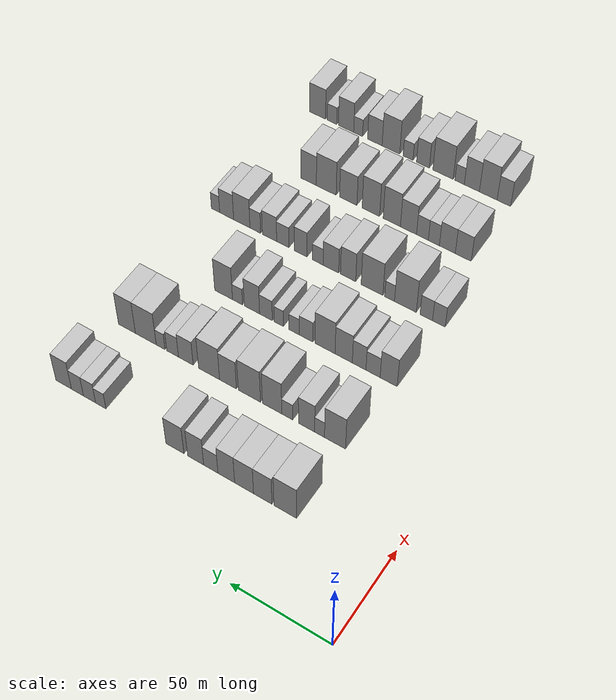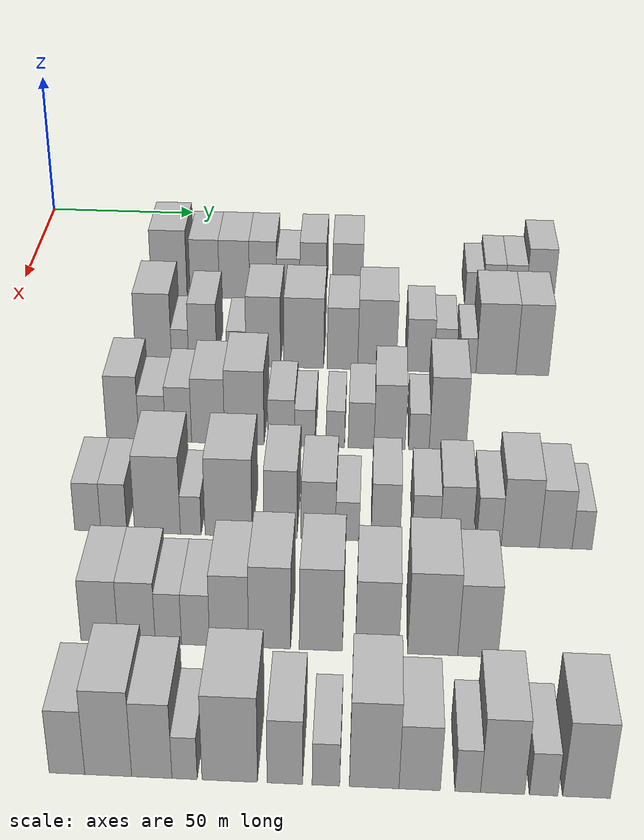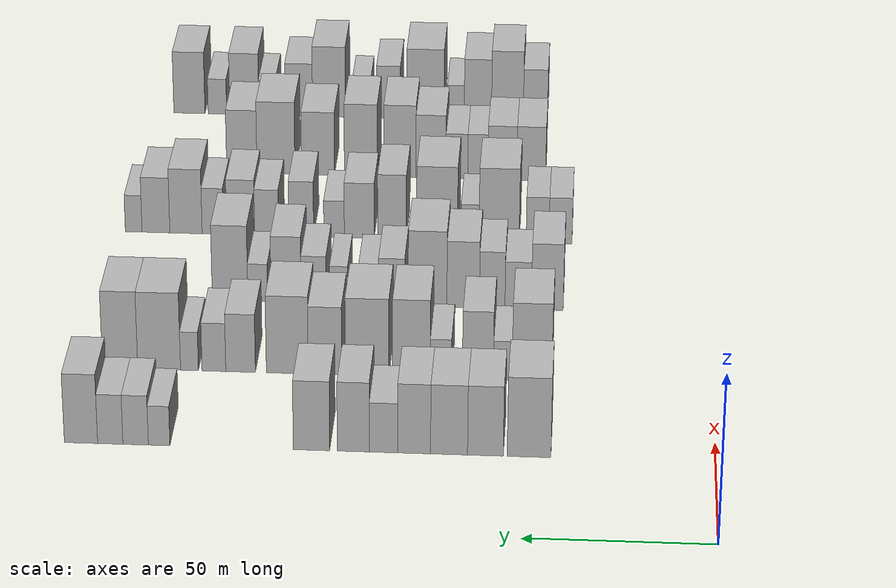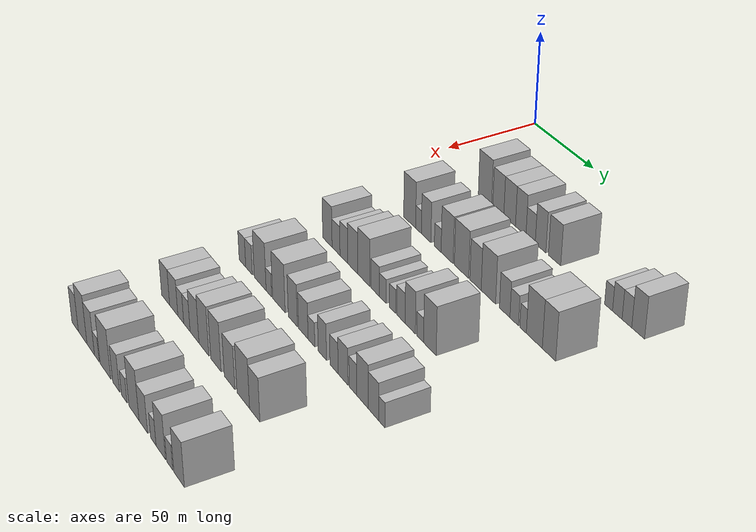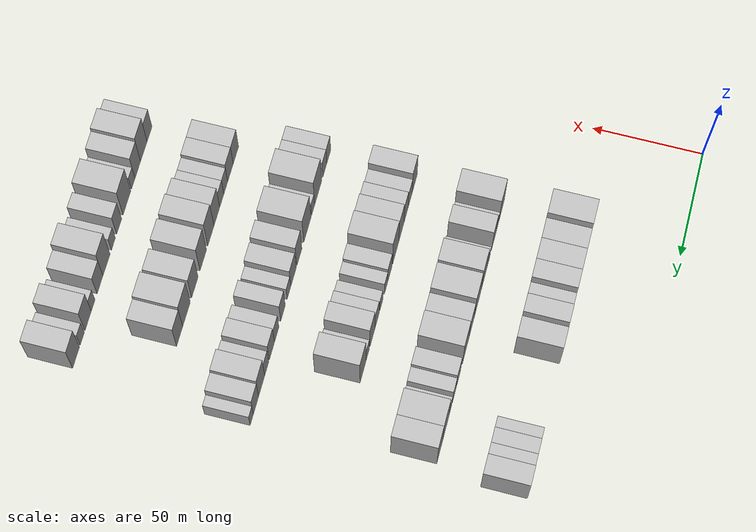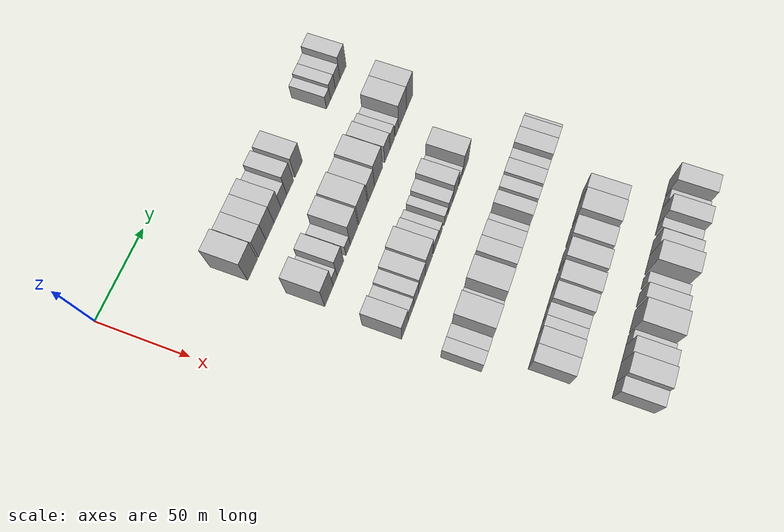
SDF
<sdf version="1.6">
 <world name="default">
  <model name="building_71">
   <static>1</static>
   <pose>50.0000 48.9919 0 0.000000 0.000000 0.000000</pose>
   <link name="link">
    <pose>0 0 12.00 0 0 0</pose>
    <collision name="collision"><geometry><box><size>20.0000 11.5092 24.0000</size></box></geometry></collision>
    <visual name="visual">
     <cast_shadows>0</cast_shadows>
     <geometry><box><size>20.0000 11.5092 24.0000</size></box></geometry>
     <material>
      <script>
       <uri>model://HANNAS_wall/materials/scripts</uri>
       <uri>model://HANNAS_wall/materials/textures</uri>
       <name>vrc/HANNAS_wall</name>
      </script>
     </material>
    </visual>
   </link>
  </model>
  <model name="building_72">
   <static>1</static>
   <pose>50.0000 60.4584 0 0.000000 0.000000 0.000000</pose>
   <link name="link">
    <pose>0 0 10.50 0 0 0</pose>
    <collision name="collision"><geometry><box><size>20.0000 9.4237 21.0000</size></box></geometry></collision>
    <visual name="visual">
     <cast_shadows>0</cast_shadows>
     <geometry><box><size>20.0000 9.4237 21.0000</size></box></geometry>
     <material>
      <script>
       <uri>model://HANNAS_wall/materials/scripts</uri>
       <uri>model://HANNAS_wall/materials/textures</uri>
       <name>vrc/HANNAS_wall</name>
      </script>
     </material>
    </visual>
   </link>
  </model>
  <model name="building_73">
   <static>1</static>
   <pose>50.0000 70.0473 0 0.000000 0.000000 0.000000</pose>
   <link name="link">
    <pose>0 0 10.50 0 0 0</pose>
    <collision name="collision"><geometry><box><size>20.0000 9.7540 21.0000</size></box></geometry></collision>
    <visual name="visual">
     <cast_shadows>0</cast_shadows>
     <geometry><box><size>20.0000 9.7540 21.0000</size></box></geometry>
     <material>
      <script>
       <uri>model://HANNAS_wall/materials/scripts</uri>
       <uri>model://HANNAS_wall/materials/textures</uri>
       <name>vrc/HANNAS_wall</name>
      </script>
     </material>
    </visual>
   </link>
  </model>
  <model name="building_74">
   <static>1</static>
   <pose>50.0000 79.2702 0 0.000000 0.000000 0.000000</pose>
   <link name="link">
    <pose>0 0 10.50 0 0 0</pose>
    <collision name="collision"><geometry><box><size>20.0000 8.6919 21.0000</size></box></geometry></collision>
    <visual name="visual">
     <cast_shadows>0</cast_shadows>
     <geometry><box><size>20.0000 8.6919 21.0000</size></box></geometry>
     <material>
      <script>
       <uri>model://HANNAS_wall/materials/scripts</uri>
       <uri>model://HANNAS_wall/materials/textures</uri>
       <name>vrc/HANNAS_wall</name>
      </script>
     </material>
    </visual>
   </link>
  </model>
  <model name="building_75">
   <static>1</static>
   <pose>50.0000 87.3554 0 0.000000 0.000000 0.000000</pose>
   <link name="link">
    <pose>0 0 7.50 0 0 0</pose>
    <collision name="collision"><geometry><box><size>20.0000 7.4786 15.0000</size></box></geometry></collision>
    <visual name="visual">
     <cast_shadows>0</cast_shadows>
     <geometry><box><size>20.0000 7.4786 15.0000</size></box></geometry>
     <material>
      <script>
       <uri>model://HANNAS_wall/materials/scripts</uri>
       <uri>model://HANNAS_wall/materials/textures</uri>
       <name>vrc/HANNAS_wall</name>
      </script>
     </material>
    </visual>
   </link>
  </model>
  <model name="building_76">
   <static>1</static>
   <pose>50.0000 95.3238 0 0.000000 0.000000 0.000000</pose>
   <link name="link">
    <pose>0 0 10.50 0 0 0</pose>
    <collision name="collision"><geometry><box><size>20.0000 8.4582 21.0000</size></box></geometry></collision>
    <visual name="visual">
     <cast_shadows>0</cast_shadows>
     <geometry><box><size>20.0000 8.4582 21.0000</size></box></geometry>
     <material>
      <script>
       <uri>model://HANNAS_wall/materials/scripts</uri>
       <uri>model://HANNAS_wall/materials/textures</uri>
       <name>vrc/HANNAS_wall</name>
      </script>
     </material>
    </visual>
   </link>
  </model>
  <model name="building_77">
   <static>1</static>
   <pose>50.0000 106.3644 0 0.000000 0.000000 0.000000</pose>
   <link name="link">
    <pose>0 0 10.50 0 0 0</pose>
    <collision name="collision"><geometry><box><size>20.0000 9.6230 21.0000</size></box></geometry></collision>
    <visual name="visual">
     <cast_shadows>0</cast_shadows>
     <geometry><box><size>20.0000 9.6230 21.0000</size></box></geometry>
     <material>
      <script>
       <uri>model://HANNAS_wall/materials/scripts</uri>
       <uri>model://HANNAS_wall/materials/textures</uri>
       <name>vrc/HANNAS_wall</name>
      </script>
     </material>
    </visual>
   </link>
  </model>
  <model name="building_78">
   <static>1</static>
   <pose>50.0000 146.7828 0 0.000000 0.000000 0.000000</pose>
   <link name="link">
    <pose>0 0 6.00 0 0 0</pose>
    <collision name="collision"><geometry><box><size>20.0000 5.7379 12.0000</size></box></geometry></collision>
    <visual name="visual">
     <cast_shadows>0</cast_shadows>
     <geometry><box><size>20.0000 5.7379 12.0000</size></box></geometry>
     <material>
      <script>
       <uri>model://HANNAS_wall/materials/scripts</uri>
       <uri>model://HANNAS_wall/materials/textures</uri>
       <name>vrc/HANNAS_wall</name>
      </script>
     </material>
    </visual>
   </link>
  </model>
  <model name="building_79">
   <static>1</static>
   <pose>50.0000 153.0316 0 0.000000 0.000000 0.000000</pose>
   <link name="link">
    <pose>0 0 7.50 0 0 0</pose>
    <collision name="collision"><geometry><box><size>20.0000 6.7597 15.0000</size></box></geometry></collision>
    <visual name="visual">
     <cast_shadows>0</cast_shadows>
     <geometry><box><size>20.0000 6.7597 15.0000</size></box></geometry>
     <material>
      <script>
       <uri>model://HANNAS_wall/materials/scripts</uri>
       <uri>model://HANNAS_wall/materials/textures</uri>
       <name>vrc/HANNAS_wall</name>
      </script>
     </material>
    </visual>
   </link>
  </model>
  <model name="building_80">
   <static>1</static>
   <pose>50.0000 159.7763 0 0.000000 0.000000 0.000000</pose>
   <link name="link">
    <pose>0 0 7.50 0 0 0</pose>
    <collision name="collision"><geometry><box><size>20.0000 6.7298 15.0000</size></box></geometry></collision>
    <visual name="visual">
     <cast_shadows>0</cast_shadows>
     <geometry><box><size>20.0000 6.7298 15.0000</size></box></geometry>
     <material>
      <script>
       <uri>model://HANNAS_wall/materials/scripts</uri>
       <uri>model://HANNAS_wall/materials/textures</uri>
       <name>vrc/HANNAS_wall</name>
      </script>
     </material>
    </visual>
   </link>
  </model>
  <model name="building_81">
   <static>1</static>
   <pose>50.0000 167.5691 0 0.000000 0.000000 0.000000</pose>
   <link name="link">
    <pose>0 0 10.50 0 0 0</pose>
    <collision name="collision"><geometry><box><size>20.0000 8.8558 21.0000</size></box></geometry></collision>
    <visual name="visual">
     <cast_shadows>0</cast_shadows>
     <geometry><box><size>20.0000 8.8558 21.0000</size></box></geometry>
     <material>
      <script>
       <uri>model://HANNAS_wall/materials/scripts</uri>
       <uri>model://HANNAS_wall/materials/textures</uri>
       <name>vrc/HANNAS_wall</name>
      </script>
     </material>
    </visual>
   </link>
  </model>
  <model name="building_202">
   <static>1</static>
   <pose>90.0000 49.2745 0 0.000000 0.000000 0.000000</pose>
   <link name="link">
    <pose>0 0 12.00 0 0 0</pose>
    <collision name="collision"><geometry><box><size>20.0000 10.8349 24.0000</size></box></geometry></collision>
    <visual name="visual">
     <cast_shadows>0</cast_shadows>
     <geometry><box><size>20.0000 10.8349 24.0000</size></box></geometry>
     <material>
      <script>
       <uri>model://HANNAS_wall/materials/scripts</uri>
       <uri>model://HANNAS_wall/materials/textures</uri>
       <name>vrc/HANNAS_wall</name>
      </script>
     </material>
    </visual>
   </link>
  </model>
  <model name="building_203">
   <static>1</static>
   <pose>90.0000 57.2523 0 0.000000 0.000000 0.000000</pose>
   <link name="link">
    <pose>0 0 6.00 0 0 0</pose>
    <collision name="collision"><geometry><box><size>20.0000 5.1207 12.0000</size></box></geometry></collision>
    <visual name="visual">
     <cast_shadows>0</cast_shadows>
     <geometry><box><size>20.0000 5.1207 12.0000</size></box></geometry>
     <material>
      <script>
       <uri>model://HANNAS_wall/materials/scripts</uri>
       <uri>model://HANNAS_wall/materials/textures</uri>
       <name>vrc/HANNAS_wall</name>
      </script>
     </material>
    </visual>
   </link>
  </model>
  <model name="building_204">
   <static>1</static>
   <pose>90.0000 64.0309 0 0.000000 0.000000 0.000000</pose>
   <link name="link">
    <pose>0 0 10.50 0 0 0</pose>
    <collision name="collision"><geometry><box><size>20.0000 8.4365 21.0000</size></box></geometry></collision>
    <visual name="visual">
     <cast_shadows>0</cast_shadows>
     <geometry><box><size>20.0000 8.4365 21.0000</size></box></geometry>
     <material>
      <script>
       <uri>model://HANNAS_wall/materials/scripts</uri>
       <uri>model://HANNAS_wall/materials/textures</uri>
       <name>vrc/HANNAS_wall</name>
      </script>
     </material>
    </visual>
   </link>
  </model>
  <model name="building_205">
   <static>1</static>
   <pose>90.0000 74.1475 0 0.000000 0.000000 0.000000</pose>
   <link name="link">
    <pose>0 0 6.00 0 0 0</pose>
    <collision name="collision"><geometry><box><size>20.0000 5.7967 12.0000</size></box></geometry></collision>
    <visual name="visual">
     <cast_shadows>0</cast_shadows>
     <geometry><box><size>20.0000 5.7967 12.0000</size></box></geometry>
     <material>
      <script>
       <uri>model://HANNAS_wall/materials/scripts</uri>
       <uri>model://HANNAS_wall/materials/textures</uri>
       <name>vrc/HANNAS_wall</name>
      </script>
     </material>
    </visual>
   </link>
  </model>
  <model name="building_206">
   <static>1</static>
   <pose>90.0000 82.1912 0 0.000000 0.000000 0.000000</pose>
   <link name="link">
    <pose>0 0 12.00 0 0 0</pose>
    <collision name="collision"><geometry><box><size>20.0000 10.2907 24.0000</size></box></geometry></collision>
    <visual name="visual">
     <cast_shadows>0</cast_shadows>
     <geometry><box><size>20.0000 10.2907 24.0000</size></box></geometry>
     <material>
      <script>
       <uri>model://HANNAS_wall/materials/scripts</uri>
       <uri>model://HANNAS_wall/materials/textures</uri>
       <name>vrc/HANNAS_wall</name>
      </script>
     </material>
    </visual>
   </link>
  </model>
  <model name="building_207">
   <static>1</static>
   <pose>90.0000 94.3012 0 0.000000 0.000000 0.000000</pose>
   <link name="link">
    <pose>0 0 12.00 0 0 0</pose>
    <collision name="collision"><geometry><box><size>20.0000 11.9292 24.0000</size></box></geometry></collision>
    <visual name="visual">
     <cast_shadows>0</cast_shadows>
     <geometry><box><size>20.0000 11.9292 24.0000</size></box></geometry>
     <material>
      <script>
       <uri>model://HANNAS_wall/materials/scripts</uri>
       <uri>model://HANNAS_wall/materials/textures</uri>
       <name>vrc/HANNAS_wall</name>
      </script>
     </material>
    </visual>
   </link>
  </model>
  <model name="building_208">
   <static>1</static>
   <pose>90.0000 105.8437 0 0.000000 0.000000 0.000000</pose>
   <link name="link">
    <pose>0 0 10.50 0 0 0</pose>
    <collision name="collision"><geometry><box><size>20.0000 9.1558 21.0000</size></box></geometry></collision>
    <visual name="visual">
     <cast_shadows>0</cast_shadows>
     <geometry><box><size>20.0000 9.1558 21.0000</size></box></geometry>
     <material>
      <script>
       <uri>model://HANNAS_wall/materials/scripts</uri>
       <uri>model://HANNAS_wall/materials/textures</uri>
       <name>vrc/HANNAS_wall</name>
      </script>
     </material>
    </visual>
   </link>
  </model>
  <model name="building_209">
   <static>1</static>
   <pose>90.0000 116.1678 0 0.000000 0.000000 0.000000</pose>
   <link name="link">
    <pose>0 0 12.00 0 0 0</pose>
    <collision name="collision"><geometry><box><size>20.0000 11.4924 24.0000</size></box></geometry></collision>
    <visual name="visual">
     <cast_shadows>0</cast_shadows>
     <geometry><box><size>20.0000 11.4924 24.0000</size></box></geometry>
     <material>
      <script>
       <uri>model://HANNAS_wall/materials/scripts</uri>
       <uri>model://HANNAS_wall/materials/textures</uri>
       <name>vrc/HANNAS_wall</name>
      </script>
     </material>
    </visual>
   </link>
  </model>
  <model name="building_210">
   <static>1</static>
   <pose>90.0000 128.9895 0 0.000000 0.000000 0.000000</pose>
   <link name="link">
    <pose>0 0 9.00 0 0 0</pose>
    <collision name="collision"><geometry><box><size>20.0000 8.1509 18.0000</size></box></geometry></collision>
    <visual name="visual">
     <cast_shadows>0</cast_shadows>
     <geometry><box><size>20.0000 8.1509 18.0000</size></box></geometry>
     <material>
      <script>
       <uri>model://HANNAS_wall/materials/scripts</uri>
       <uri>model://HANNAS_wall/materials/textures</uri>
       <name>vrc/HANNAS_wall</name>
      </script>
     </material>
    </visual>
   </link>
  </model>
  <model name="building_211">
   <static>1</static>
   <pose>90.0000 136.3260 0 0.000000 0.000000 0.000000</pose>
   <link name="link">
    <pose>0 0 7.50 0 0 0</pose>
    <collision name="collision"><geometry><box><size>20.0000 6.5221 15.0000</size></box></geometry></collision>
    <visual name="visual">
     <cast_shadows>0</cast_shadows>
     <geometry><box><size>20.0000 6.5221 15.0000</size></box></geometry>
     <material>
      <script>
       <uri>model://HANNAS_wall/materials/scripts</uri>
       <uri>model://HANNAS_wall/materials/textures</uri>
       <name>vrc/HANNAS_wall</name>
      </script>
     </material>
    </visual>
   </link>
  </model>
  <model name="building_212">
   <static>1</static>
   <pose>90.0000 143.0487 0 0.000000 0.000000 0.000000</pose>
   <link name="link">
    <pose>0 0 6.00 0 0 0</pose>
    <collision name="collision"><geometry><box><size>20.0000 4.9234 12.0000</size></box></geometry></collision>
    <visual name="visual">
     <cast_shadows>0</cast_shadows>
     <geometry><box><size>20.0000 4.9234 12.0000</size></box></geometry>
     <material>
      <script>
       <uri>model://HANNAS_wall/materials/scripts</uri>
       <uri>model://HANNAS_wall/materials/textures</uri>
       <name>vrc/HANNAS_wall</name>
      </script>
     </material>
    </visual>
   </link>
  </model>
  <model name="building_213">
   <static>1</static>
   <pose>90.0000 151.4051 0 0.000000 0.000000 0.000000</pose>
   <link name="link">
    <pose>0 0 12.00 0 0 0</pose>
    <collision name="collision"><geometry><box><size>20.0000 11.7893 24.0000</size></box></geometry></collision>
    <visual name="visual">
     <cast_shadows>0</cast_shadows>
     <geometry><box><size>20.0000 11.7893 24.0000</size></box></geometry>
     <material>
      <script>
       <uri>model://HANNAS_wall/materials/scripts</uri>
       <uri>model://HANNAS_wall/materials/textures</uri>
       <name>vrc/HANNAS_wall</name>
      </script>
     </material>
    </visual>
   </link>
  </model>
  <model name="building_214">
   <static>1</static>
   <pose>90.0000 162.1543 0 0.000000 0.000000 0.000000</pose>
   <link name="link">
    <pose>0 0 12.00 0 0 0</pose>
    <collision name="collision"><geometry><box><size>20.0000 9.7090 24.0000</size></box></geometry></collision>
    <visual name="visual">
     <cast_shadows>0</cast_shadows>
     <geometry><box><size>20.0000 9.7090 24.0000</size></box></geometry>
     <material>
      <script>
       <uri>model://HANNAS_wall/materials/scripts</uri>
       <uri>model://HANNAS_wall/materials/textures</uri>
       <name>vrc/HANNAS_wall</name>
      </script>
     </material>
    </visual>
   </link>
  </model>
  <model name="building_333">
   <static>1</static>
   <pose>130.0000 46.0071 0 0.000000 0.000000 0.000000</pose>
   <link name="link">
    <pose>0 0 10.50 0 0 0</pose>
    <collision name="collision"><geometry><box><size>20.0000 8.9540 21.0000</size></box></geometry></collision>
    <visual name="visual">
     <cast_shadows>0</cast_shadows>
     <geometry><box><size>20.0000 8.9540 21.0000</size></box></geometry>
     <material>
      <script>
       <uri>model://HANNAS_wall/materials/scripts</uri>
       <uri>model://HANNAS_wall/materials/textures</uri>
       <name>vrc/HANNAS_wall</name>
      </script>
     </material>
    </visual>
   </link>
  </model>
  <model name="building_334">
   <static>1</static>
   <pose>130.0000 54.2222 0 0.000000 0.000000 0.000000</pose>
   <link name="link">
    <pose>0 0 7.50 0 0 0</pose>
    <collision name="collision"><geometry><box><size>20.0000 7.4762 15.0000</size></box></geometry></collision>
    <visual name="visual">
     <cast_shadows>0</cast_shadows>
     <geometry><box><size>20.0000 7.4762 15.0000</size></box></geometry>
     <material>
      <script>
       <uri>model://HANNAS_wall/materials/scripts</uri>
       <uri>model://HANNAS_wall/materials/textures</uri>
       <name>vrc/HANNAS_wall</name>
      </script>
     </material>
    </visual>
   </link>
  </model>
  <model name="building_335">
   <static>1</static>
   <pose>130.0000 61.5689 0 0.000000 0.000000 0.000000</pose>
   <link name="link">
    <pose>0 0 9.00 0 0 0</pose>
    <collision name="collision"><geometry><box><size>20.0000 7.2172 18.0000</size></box></geometry></collision>
    <visual name="visual">
     <cast_shadows>0</cast_shadows>
     <geometry><box><size>20.0000 7.2172 18.0000</size></box></geometry>
     <material>
      <script>
       <uri>model://HANNAS_wall/materials/scripts</uri>
       <uri>model://HANNAS_wall/materials/textures</uri>
       <name>vrc/HANNAS_wall</name>
      </script>
     </material>
    </visual>
   </link>
  </model>
  <model name="building_336">
   <static>1</static>
   <pose>130.0000 69.7749 0 0.000000 0.000000 0.000000</pose>
   <link name="link">
    <pose>0 0 10.50 0 0 0</pose>
    <collision name="collision"><geometry><box><size>20.0000 9.1948 21.0000</size></box></geometry></collision>
    <visual name="visual">
     <cast_shadows>0</cast_shadows>
     <geometry><box><size>20.0000 9.1948 21.0000</size></box></geometry>
     <material>
      <script>
       <uri>model://HANNAS_wall/materials/scripts</uri>
       <uri>model://HANNAS_wall/materials/textures</uri>
       <name>vrc/HANNAS_wall</name>
      </script>
     </material>
    </visual>
   </link>
  </model>
  <model name="building_337">
   <static>1</static>
   <pose>130.0000 79.8302 0 0.000000 0.000000 0.000000</pose>
   <link name="link">
    <pose>0 0 12.00 0 0 0</pose>
    <collision name="collision"><geometry><box><size>20.0000 10.9158 24.0000</size></box></geometry></collision>
    <visual name="visual">
     <cast_shadows>0</cast_shadows>
     <geometry><box><size>20.0000 10.9158 24.0000</size></box></geometry>
     <material>
      <script>
       <uri>model://HANNAS_wall/materials/scripts</uri>
       <uri>model://HANNAS_wall/materials/textures</uri>
       <name>vrc/HANNAS_wall</name>
      </script>
     </material>
    </visual>
   </link>
  </model>
  <model name="building_338">
   <static>1</static>
   <pose>130.0000 89.9811 0 0.000000 0.000000 0.000000</pose>
   <link name="link">
    <pose>0 0 7.50 0 0 0</pose>
    <collision name="collision"><geometry><box><size>20.0000 7.3860 15.0000</size></box></geometry></collision>
    <visual name="visual">
     <cast_shadows>0</cast_shadows>
     <geometry><box><size>20.0000 7.3860 15.0000</size></box></geometry>
     <material>
      <script>
       <uri>model://HANNAS_wall/materials/scripts</uri>
       <uri>model://HANNAS_wall/materials/textures</uri>
       <name>vrc/HANNAS_wall</name>
      </script>
     </material>
    </visual>
   </link>
  </model>
  <model name="building_339">
   <static>1</static>
   <pose>130.0000 96.5388 0 0.000000 0.000000 0.000000</pose>
   <link name="link">
    <pose>0 0 6.00 0 0 0</pose>
    <collision name="collision"><geometry><box><size>20.0000 5.7295 12.0000</size></box></geometry></collision>
    <visual name="visual">
     <cast_shadows>0</cast_shadows>
     <geometry><box><size>20.0000 5.7295 12.0000</size></box></geometry>
     <material>
      <script>
       <uri>model://HANNAS_wall/materials/scripts</uri>
       <uri>model://HANNAS_wall/materials/textures</uri>
       <name>vrc/HANNAS_wall</name>
      </script>
     </material>
    </visual>
   </link>
  </model>
  <model name="building_340">
   <static>1</static>
   <pose>130.0000 104.9634 0 0.000000 0.000000 0.000000</pose>
   <link name="link">
    <pose>0 0 6.00 0 0 0</pose>
    <collision name="collision"><geometry><box><size>20.0000 5.1196 12.0000</size></box></geometry></collision>
    <visual name="visual">
     <cast_shadows>0</cast_shadows>
     <geometry><box><size>20.0000 5.1196 12.0000</size></box></geometry>
     <material>
      <script>
       <uri>model://HANNAS_wall/materials/scripts</uri>
       <uri>model://HANNAS_wall/materials/textures</uri>
       <name>vrc/HANNAS_wall</name>
      </script>
     </material>
    </visual>
   </link>
  </model>
  <model name="building_341">
   <static>1</static>
   <pose>130.0000 112.0715 0 0.000000 0.000000 0.000000</pose>
   <link name="link">
    <pose>0 0 7.50 0 0 0</pose>
    <collision name="collision"><geometry><box><size>20.0000 7.0966 15.0000</size></box></geometry></collision>
    <visual name="visual">
     <cast_shadows>0</cast_shadows>
     <geometry><box><size>20.0000 7.0966 15.0000</size></box></geometry>
     <material>
      <script>
       <uri>model://HANNAS_wall/materials/scripts</uri>
       <uri>model://HANNAS_wall/materials/textures</uri>
       <name>vrc/HANNAS_wall</name>
      </script>
     </material>
    </visual>
   </link>
  </model>
  <model name="building_342">
   <static>1</static>
   <pose>130.0000 119.8862 0 0.000000 0.000000 0.000000</pose>
   <link name="link">
    <pose>0 0 10.50 0 0 0</pose>
    <collision name="collision"><geometry><box><size>20.0000 8.5328 21.0000</size></box></geometry></collision>
    <visual name="visual">
     <cast_shadows>0</cast_shadows>
     <geometry><box><size>20.0000 8.5328 21.0000</size></box></geometry>
     <material>
      <script>
       <uri>model://HANNAS_wall/materials/scripts</uri>
       <uri>model://HANNAS_wall/materials/textures</uri>
       <name>vrc/HANNAS_wall</name>
      </script>
     </material>
    </visual>
   </link>
  </model>
  <model name="building_343">
   <static>1</static>
   <pose>130.0000 127.9580 0 0.000000 0.000000 0.000000</pose>
   <link name="link">
    <pose>0 0 6.00 0 0 0</pose>
    <collision name="collision"><geometry><box><size>20.0000 5.6109 12.0000</size></box></geometry></collision>
    <visual name="visual">
     <cast_shadows>0</cast_shadows>
     <geometry><box><size>20.0000 5.6109 12.0000</size></box></geometry>
     <material>
      <script>
       <uri>model://HANNAS_wall/materials/scripts</uri>
       <uri>model://HANNAS_wall/materials/textures</uri>
       <name>vrc/HANNAS_wall</name>
      </script>
     </material>
    </visual>
   </link>
  </model>
  <model name="building_344">
   <static>1</static>
   <pose>130.0000 135.8191 0 0.000000 0.000000 0.000000</pose>
   <link name="link">
    <pose>0 0 12.00 0 0 0</pose>
    <collision name="collision"><geometry><box><size>20.0000 10.1113 24.0000</size></box></geometry></collision>
    <visual name="visual">
     <cast_shadows>0</cast_shadows>
     <geometry><box><size>20.0000 10.1113 24.0000</size></box></geometry>
     <material>
      <script>
       <uri>model://HANNAS_wall/materials/scripts</uri>
       <uri>model://HANNAS_wall/materials/textures</uri>
       <name>vrc/HANNAS_wall</name>
      </script>
     </material>
    </visual>
   </link>
  </model>
  <model name="building_472">
   <static>1</static>
   <pose>170.0000 43.0730 0 0.000000 0.000000 0.000000</pose>
   <link name="link">
    <pose>0 0 7.50 0 0 0</pose>
    <collision name="collision"><geometry><box><size>20.0000 6.7156 15.0000</size></box></geometry></collision>
    <visual name="visual">
     <cast_shadows>0</cast_shadows>
     <geometry><box><size>20.0000 6.7156 15.0000</size></box></geometry>
     <material>
      <script>
       <uri>model://HANNAS_wall/materials/scripts</uri>
       <uri>model://HANNAS_wall/materials/textures</uri>
       <name>vrc/HANNAS_wall</name>
      </script>
     </material>
    </visual>
   </link>
  </model>
  <model name="building_473">
   <static>1</static>
   <pose>170.0000 49.7699 0 0.000000 0.000000 0.000000</pose>
   <link name="link">
    <pose>0 0 7.50 0 0 0</pose>
    <collision name="collision"><geometry><box><size>20.0000 6.6783 15.0000</size></box></geometry></collision>
    <visual name="visual">
     <cast_shadows>0</cast_shadows>
     <geometry><box><size>20.0000 6.6783 15.0000</size></box></geometry>
     <material>
      <script>
       <uri>model://HANNAS_wall/materials/scripts</uri>
       <uri>model://HANNAS_wall/materials/textures</uri>
       <name>vrc/HANNAS_wall</name>
      </script>
     </material>
    </visual>
   </link>
  </model>
  <model name="building_474">
   <static>1</static>
   <pose>170.0000 60.9690 0 0.000000 0.000000 0.000000</pose>
   <link name="link">
    <pose>0 0 12.00 0 0 0</pose>
    <collision name="collision"><geometry><box><size>20.0000 11.7200 24.0000</size></box></geometry></collision>
    <visual name="visual">
     <cast_shadows>0</cast_shadows>
     <geometry><box><size>20.0000 11.7200 24.0000</size></box></geometry>
     <material>
      <script>
       <uri>model://HANNAS_wall/materials/scripts</uri>
       <uri>model://HANNAS_wall/materials/textures</uri>
       <name>vrc/HANNAS_wall</name>
      </script>
     </material>
    </visual>
   </link>
  </model>
  <model name="building_475">
   <static>1</static>
   <pose>170.0000 69.4781 0 0.000000 0.000000 0.000000</pose>
   <link name="link">
    <pose>0 0 6.00 0 0 0</pose>
    <collision name="collision"><geometry><box><size>20.0000 5.2983 12.0000</size></box></geometry></collision>
    <visual name="visual">
     <cast_shadows>0</cast_shadows>
     <geometry><box><size>20.0000 5.2983 12.0000</size></box></geometry>
     <material>
      <script>
       <uri>model://HANNAS_wall/materials/scripts</uri>
       <uri>model://HANNAS_wall/materials/textures</uri>
       <name>vrc/HANNAS_wall</name>
      </script>
     </material>
    </visual>
   </link>
  </model>
  <model name="building_476">
   <static>1</static>
   <pose>170.0000 79.0990 0 0.000000 0.000000 0.000000</pose>
   <link name="link">
    <pose>0 0 12.00 0 0 0</pose>
    <collision name="collision"><geometry><box><size>20.0000 11.9434 24.0000</size></box></geometry></collision>
    <visual name="visual">
     <cast_shadows>0</cast_shadows>
     <geometry><box><size>20.0000 11.9434 24.0000</size></box></geometry>
     <material>
      <script>
       <uri>model://HANNAS_wall/materials/scripts</uri>
       <uri>model://HANNAS_wall/materials/textures</uri>
       <name>vrc/HANNAS_wall</name>
      </script>
     </material>
    </visual>
   </link>
  </model>
  <model name="building_477">
   <static>1</static>
   <pose>170.0000 92.2778 0 0.000000 0.000000 0.000000</pose>
   <link name="link">
    <pose>0 0 10.50 0 0 0</pose>
    <collision name="collision"><geometry><box><size>20.0000 8.4141 21.0000</size></box></geometry></collision>
    <visual name="visual">
     <cast_shadows>0</cast_shadows>
     <geometry><box><size>20.0000 8.4141 21.0000</size></box></geometry>
     <material>
      <script>
       <uri>model://HANNAS_wall/materials/scripts</uri>
       <uri>model://HANNAS_wall/materials/textures</uri>
       <name>vrc/HANNAS_wall</name>
      </script>
     </material>
    </visual>
   </link>
  </model>
  <model name="building_478">
   <static>1</static>
   <pose>170.0000 101.8562 0 0.000000 0.000000 0.000000</pose>
   <link name="link">
    <pose>0 0 9.00 0 0 0</pose>
    <collision name="collision"><geometry><box><size>20.0000 8.7427 18.0000</size></box></geometry></collision>
    <visual name="visual">
     <cast_shadows>0</cast_shadows>
     <geometry><box><size>20.0000 8.7427 18.0000</size></box></geometry>
     <material>
      <script>
       <uri>model://HANNAS_wall/materials/scripts</uri>
       <uri>model://HANNAS_wall/materials/textures</uri>
       <name>vrc/HANNAS_wall</name>
      </script>
     </material>
    </visual>
   </link>
  </model>
  <model name="building_479">
   <static>1</static>
   <pose>170.0000 109.2275 0 0.000000 0.000000 0.000000</pose>
   <link name="link">
    <pose>0 0 6.00 0 0 0</pose>
    <collision name="collision"><geometry><box><size>20.0000 5.9997 12.0000</size></box></geometry></collision>
    <visual name="visual">
     <cast_shadows>0</cast_shadows>
     <geometry><box><size>20.0000 5.9997 12.0000</size></box></geometry>
     <material>
      <script>
       <uri>model://HANNAS_wall/materials/scripts</uri>
       <uri>model://HANNAS_wall/materials/textures</uri>
       <name>vrc/HANNAS_wall</name>
      </script>
     </material>
    </visual>
   </link>
  </model>
  <model name="building_480">
   <static>1</static>
   <pose>170.0000 118.8755 0 0.000000 0.000000 0.000000</pose>
   <link name="link">
    <pose>0 0 9.00 0 0 0</pose>
    <collision name="collision"><geometry><box><size>20.0000 7.2963 18.0000</size></box></geometry></collision>
    <visual name="visual">
     <cast_shadows>0</cast_shadows>
     <geometry><box><size>20.0000 7.2963 18.0000</size></box></geometry>
     <material>
      <script>
       <uri>model://HANNAS_wall/materials/scripts</uri>
       <uri>model://HANNAS_wall/materials/textures</uri>
       <name>vrc/HANNAS_wall</name>
      </script>
     </material>
    </visual>
   </link>
  </model>
  <model name="building_481">
   <static>1</static>
   <pose>170.0000 129.0309 0 0.000000 0.000000 0.000000</pose>
   <link name="link">
    <pose>0 0 7.50 0 0 0</pose>
    <collision name="collision"><geometry><box><size>20.0000 7.0146 15.0000</size></box></geometry></collision>
    <visual name="visual">
     <cast_shadows>0</cast_shadows>
     <geometry><box><size>20.0000 7.0146 15.0000</size></box></geometry>
     <material>
      <script>
       <uri>model://HANNAS_wall/materials/scripts</uri>
       <uri>model://HANNAS_wall/materials/textures</uri>
       <name>vrc/HANNAS_wall</name>
      </script>
     </material>
    </visual>
   </link>
  </model>
  <model name="building_482">
   <static>1</static>
   <pose>170.0000 136.6551 0 0.000000 0.000000 0.000000</pose>
   <link name="link">
    <pose>0 0 9.00 0 0 0</pose>
    <collision name="collision"><geometry><box><size>20.0000 8.2338 18.0000</size></box></geometry></collision>
    <visual name="visual">
     <cast_shadows>0</cast_shadows>
     <geometry><box><size>20.0000 8.2338 18.0000</size></box></geometry>
     <material>
      <script>
       <uri>model://HANNAS_wall/materials/scripts</uri>
       <uri>model://HANNAS_wall/materials/textures</uri>
       <name>vrc/HANNAS_wall</name>
      </script>
     </material>
    </visual>
   </link>
  </model>
  <model name="building_483">
   <static>1</static>
   <pose>170.0000 144.8785 0 0.000000 0.000000 0.000000</pose>
   <link name="link">
    <pose>0 0 7.50 0 0 0</pose>
    <collision name="collision"><geometry><box><size>20.0000 6.2130 15.0000</size></box></geometry></collision>
    <visual name="visual">
     <cast_shadows>0</cast_shadows>
     <geometry><box><size>20.0000 6.2130 15.0000</size></box></geometry>
     <material>
      <script>
       <uri>model://HANNAS_wall/materials/scripts</uri>
       <uri>model://HANNAS_wall/materials/textures</uri>
       <name>vrc/HANNAS_wall</name>
      </script>
     </material>
    </visual>
   </link>
  </model>
  <model name="building_484">
   <static>1</static>
   <pose>170.0000 152.7422 0 0.000000 0.000000 0.000000</pose>
   <link name="link">
    <pose>0 0 10.50 0 0 0</pose>
    <collision name="collision"><geometry><box><size>20.0000 9.5144 21.0000</size></box></geometry></collision>
    <visual name="visual">
     <cast_shadows>0</cast_shadows>
     <geometry><box><size>20.0000 9.5144 21.0000</size></box></geometry>
     <material>
      <script>
       <uri>model://HANNAS_wall/materials/scripts</uri>
       <uri>model://HANNAS_wall/materials/textures</uri>
       <name>vrc/HANNAS_wall</name>
      </script>
     </material>
    </visual>
   </link>
  </model>
  <model name="building_485">
   <static>1</static>
   <pose>170.0000 161.5892 0 0.000000 0.000000 0.000000</pose>
   <link name="link">
    <pose>0 0 9.00 0 0 0</pose>
    <collision name="collision"><geometry><box><size>20.0000 8.1796 18.0000</size></box></geometry></collision>
    <visual name="visual">
     <cast_shadows>0</cast_shadows>
     <geometry><box><size>20.0000 8.1796 18.0000</size></box></geometry>
     <material>
      <script>
       <uri>model://HANNAS_wall/materials/scripts</uri>
       <uri>model://HANNAS_wall/materials/textures</uri>
       <name>vrc/HANNAS_wall</name>
      </script>
     </material>
    </visual>
   </link>
  </model>
  <model name="building_486">
   <static>1</static>
   <pose>170.0000 168.1461 0 0.000000 0.000000 0.000000</pose>
   <link name="link">
    <pose>0 0 6.00 0 0 0</pose>
    <collision name="collision"><geometry><box><size>20.0000 4.9342 12.0000</size></box></geometry></collision>
    <visual name="visual">
     <cast_shadows>0</cast_shadows>
     <geometry><box><size>20.0000 4.9342 12.0000</size></box></geometry>
     <material>
      <script>
       <uri>model://HANNAS_wall/materials/scripts</uri>
       <uri>model://HANNAS_wall/materials/textures</uri>
       <name>vrc/HANNAS_wall</name>
      </script>
     </material>
    </visual>
   </link>
  </model>
  <model name="building_616">
   <static>1</static>
   <pose>210.0000 52.6937 0 0.000000 0.000000 0.000000</pose>
   <link name="link">
    <pose>0 0 9.00 0 0 0</pose>
    <collision name="collision"><geometry><box><size>20.0000 8.6704 18.0000</size></box></geometry></collision>
    <visual name="visual">
     <cast_shadows>0</cast_shadows>
     <geometry><box><size>20.0000 8.6704 18.0000</size></box></geometry>
     <material>
      <script>
       <uri>model://HANNAS_wall/materials/scripts</uri>
       <uri>model://HANNAS_wall/materials/textures</uri>
       <name>vrc/HANNAS_wall</name>
      </script>
     </material>
    </visual>
   </link>
  </model>
  <model name="building_617">
   <static>1</static>
   <pose>210.0000 61.3822 0 0.000000 0.000000 0.000000</pose>
   <link name="link">
    <pose>0 0 9.00 0 0 0</pose>
    <collision name="collision"><geometry><box><size>20.0000 8.7065 18.0000</size></box></geometry></collision>
    <visual name="visual">
     <cast_shadows>0</cast_shadows>
     <geometry><box><size>20.0000 8.7065 18.0000</size></box></geometry>
     <material>
      <script>
       <uri>model://HANNAS_wall/materials/scripts</uri>
       <uri>model://HANNAS_wall/materials/textures</uri>
       <name>vrc/HANNAS_wall</name>
      </script>
     </material>
    </visual>
   </link>
  </model>
  <model name="building_618">
   <static>1</static>
   <pose>210.0000 68.7845 0 0.000000 0.000000 0.000000</pose>
   <link name="link">
    <pose>0 0 7.50 0 0 0</pose>
    <collision name="collision"><geometry><box><size>20.0000 6.0981 15.0000</size></box></geometry></collision>
    <visual name="visual">
     <cast_shadows>0</cast_shadows>
     <geometry><box><size>20.0000 6.0981 15.0000</size></box></geometry>
     <material>
      <script>
       <uri>model://HANNAS_wall/materials/scripts</uri>
       <uri>model://HANNAS_wall/materials/textures</uri>
       <name>vrc/HANNAS_wall</name>
      </script>
     </material>
    </visual>
   </link>
  </model>
  <model name="building_619">
   <static>1</static>
   <pose>210.0000 75.1068 0 0.000000 0.000000 0.000000</pose>
   <link name="link">
    <pose>0 0 7.50 0 0 0</pose>
    <collision name="collision"><geometry><box><size>20.0000 6.5466 15.0000</size></box></geometry></collision>
    <visual name="visual">
     <cast_shadows>0</cast_shadows>
     <geometry><box><size>20.0000 6.5466 15.0000</size></box></geometry>
     <material>
      <script>
       <uri>model://HANNAS_wall/materials/scripts</uri>
       <uri>model://HANNAS_wall/materials/textures</uri>
       <name>vrc/HANNAS_wall</name>
      </script>
     </material>
    </visual>
   </link>
  </model>
  <model name="building_620">
   <static>1</static>
   <pose>210.0000 82.8939 0 0.000000 0.000000 0.000000</pose>
   <link name="link">
    <pose>0 0 10.50 0 0 0</pose>
    <collision name="collision"><geometry><box><size>20.0000 9.0275 21.0000</size></box></geometry></collision>
    <visual name="visual">
     <cast_shadows>0</cast_shadows>
     <geometry><box><size>20.0000 9.0275 21.0000</size></box></geometry>
     <material>
      <script>
       <uri>model://HANNAS_wall/materials/scripts</uri>
       <uri>model://HANNAS_wall/materials/textures</uri>
       <name>vrc/HANNAS_wall</name>
      </script>
     </material>
    </visual>
   </link>
  </model>
  <model name="building_621">
   <static>1</static>
   <pose>210.0000 92.2615 0 0.000000 0.000000 0.000000</pose>
   <link name="link">
    <pose>0 0 12.00 0 0 0</pose>
    <collision name="collision"><geometry><box><size>20.0000 9.7076 24.0000</size></box></geometry></collision>
    <visual name="visual">
     <cast_shadows>0</cast_shadows>
     <geometry><box><size>20.0000 9.7076 24.0000</size></box></geometry>
     <material>
      <script>
       <uri>model://HANNAS_wall/materials/scripts</uri>
       <uri>model://HANNAS_wall/materials/textures</uri>
       <name>vrc/HANNAS_wall</name>
      </script>
     </material>
    </visual>
   </link>
  </model>
  <model name="building_622">
   <static>1</static>
   <pose>210.0000 104.0883 0 0.000000 0.000000 0.000000</pose>
   <link name="link">
    <pose>0 0 12.00 0 0 0</pose>
    <collision name="collision"><geometry><box><size>20.0000 9.9461 24.0000</size></box></geometry></collision>
    <visual name="visual">
     <cast_shadows>0</cast_shadows>
     <geometry><box><size>20.0000 9.9461 24.0000</size></box></geometry>
     <material>
      <script>
       <uri>model://HANNAS_wall/materials/scripts</uri>
       <uri>model://HANNAS_wall/materials/textures</uri>
       <name>vrc/HANNAS_wall</name>
      </script>
     </material>
    </visual>
   </link>
  </model>
  <model name="building_623">
   <static>1</static>
   <pose>210.0000 117.0433 0 0.000000 0.000000 0.000000</pose>
   <link name="link">
    <pose>0 0 10.50 0 0 0</pose>
    <collision name="collision"><geometry><box><size>20.0000 9.9638 21.0000</size></box></geometry></collision>
    <visual name="visual">
     <cast_shadows>0</cast_shadows>
     <geometry><box><size>20.0000 9.9638 21.0000</size></box></geometry>
     <material>
      <script>
       <uri>model://HANNAS_wall/materials/scripts</uri>
       <uri>model://HANNAS_wall/materials/textures</uri>
       <name>vrc/HANNAS_wall</name>
      </script>
     </material>
    </visual>
   </link>
  </model>
  <model name="building_624">
   <static>1</static>
   <pose>210.0000 129.7762 0 0.000000 0.000000 0.000000</pose>
   <link name="link">
    <pose>0 0 12.00 0 0 0</pose>
    <collision name="collision"><geometry><box><size>20.0000 11.5020 24.0000</size></box></geometry></collision>
    <visual name="visual">
     <cast_shadows>0</cast_shadows>
     <geometry><box><size>20.0000 11.5020 24.0000</size></box></geometry>
     <material>
      <script>
       <uri>model://HANNAS_wall/materials/scripts</uri>
       <uri>model://HANNAS_wall/materials/textures</uri>
       <name>vrc/HANNAS_wall</name>
      </script>
     </material>
    </visual>
   </link>
  </model>
  <model name="building_625">
   <static>1</static>
   <pose>210.0000 140.1230 0 0.000000 0.000000 0.000000</pose>
   <link name="link">
    <pose>0 0 10.50 0 0 0</pose>
    <collision name="collision"><geometry><box><size>20.0000 9.1918 21.0000</size></box></geometry></collision>
    <visual name="visual">
     <cast_shadows>0</cast_shadows>
     <geometry><box><size>20.0000 9.1918 21.0000</size></box></geometry>
     <material>
      <script>
       <uri>model://HANNAS_wall/materials/scripts</uri>
       <uri>model://HANNAS_wall/materials/textures</uri>
       <name>vrc/HANNAS_wall</name>
      </script>
     </material>
    </visual>
   </link>
  </model>
  <model name="building_749">
   <static>1</static>
   <pose>250.0000 52.4427 0 0.000000 0.000000 0.000000</pose>
   <link name="link">
    <pose>0 0 9.00 0 0 0</pose>
    <collision name="collision"><geometry><box><size>20.0000 7.5064 18.0000</size></box></geometry></collision>
    <visual name="visual">
     <cast_shadows>0</cast_shadows>
     <geometry><box><size>20.0000 7.5064 18.0000</size></box></geometry>
     <material>
      <script>
       <uri>model://HANNAS_wall/materials/scripts</uri>
       <uri>model://HANNAS_wall/materials/textures</uri>
       <name>vrc/HANNAS_wall</name>
      </script>
     </material>
    </visual>
   </link>
  </model>
  <model name="building_750">
   <static>1</static>
   <pose>250.0000 61.1453 0 0.000000 0.000000 0.000000</pose>
   <link name="link">
    <pose>0 0 12.00 0 0 0</pose>
    <collision name="collision"><geometry><box><size>20.0000 9.8988 24.0000</size></box></geometry></collision>
    <visual name="visual">
     <cast_shadows>0</cast_shadows>
     <geometry><box><size>20.0000 9.8988 24.0000</size></box></geometry>
     <material>
      <script>
       <uri>model://HANNAS_wall/materials/scripts</uri>
       <uri>model://HANNAS_wall/materials/textures</uri>
       <name>vrc/HANNAS_wall</name>
      </script>
     </material>
    </visual>
   </link>
  </model>
  <model name="building_751">
   <static>1</static>
   <pose>250.0000 70.3256 0 0.000000 0.000000 0.000000</pose>
   <link name="link">
    <pose>0 0 10.50 0 0 0</pose>
    <collision name="collision"><geometry><box><size>20.0000 8.4618 21.0000</size></box></geometry></collision>
    <visual name="visual">
     <cast_shadows>0</cast_shadows>
     <geometry><box><size>20.0000 8.4618 21.0000</size></box></geometry>
     <material>
      <script>
       <uri>model://HANNAS_wall/materials/scripts</uri>
       <uri>model://HANNAS_wall/materials/textures</uri>
       <name>vrc/HANNAS_wall</name>
      </script>
     </material>
    </visual>
   </link>
  </model>
  <model name="building_752">
   <static>1</static>
   <pose>250.0000 77.2031 0 0.000000 0.000000 0.000000</pose>
   <link name="link">
    <pose>0 0 6.00 0 0 0</pose>
    <collision name="collision"><geometry><box><size>20.0000 5.2931 12.0000</size></box></geometry></collision>
    <visual name="visual">
     <cast_shadows>0</cast_shadows>
     <geometry><box><size>20.0000 5.2931 12.0000</size></box></geometry>
     <material>
      <script>
       <uri>model://HANNAS_wall/materials/scripts</uri>
       <uri>model://HANNAS_wall/materials/textures</uri>
       <name>vrc/HANNAS_wall</name>
      </script>
     </material>
    </visual>
   </link>
  </model>
  <model name="building_753">
   <static>1</static>
   <pose>250.0000 86.6426 0 0.000000 0.000000 0.000000</pose>
   <link name="link">
    <pose>0 0 12.00 0 0 0</pose>
    <collision name="collision"><geometry><box><size>20.0000 11.5860 24.0000</size></box></geometry></collision>
    <visual name="visual">
     <cast_shadows>0</cast_shadows>
     <geometry><box><size>20.0000 11.5860 24.0000</size></box></geometry>
     <material>
      <script>
       <uri>model://HANNAS_wall/materials/scripts</uri>
       <uri>model://HANNAS_wall/materials/textures</uri>
       <name>vrc/HANNAS_wall</name>
      </script>
     </material>
    </visual>
   </link>
  </model>
  <model name="building_754">
   <static>1</static>
   <pose>250.0000 98.1341 0 0.000000 0.000000 0.000000</pose>
   <link name="link">
    <pose>0 0 9.00 0 0 0</pose>
    <collision name="collision"><geometry><box><size>20.0000 7.3971 18.0000</size></box></geometry></collision>
    <visual name="visual">
     <cast_shadows>0</cast_shadows>
     <geometry><box><size>20.0000 7.3971 18.0000</size></box></geometry>
     <material>
      <script>
       <uri>model://HANNAS_wall/materials/scripts</uri>
       <uri>model://HANNAS_wall/materials/textures</uri>
       <name>vrc/HANNAS_wall</name>
      </script>
     </material>
    </visual>
   </link>
  </model>
  <model name="building_755">
   <static>1</static>
   <pose>250.0000 106.6961 0 0.000000 0.000000 0.000000</pose>
   <link name="link">
    <pose>0 0 6.00 0 0 0</pose>
    <collision name="collision"><geometry><box><size>20.0000 5.7269 12.0000</size></box></geometry></collision>
    <visual name="visual">
     <cast_shadows>0</cast_shadows>
     <geometry><box><size>20.0000 5.7269 12.0000</size></box></geometry>
     <material>
      <script>
       <uri>model://HANNAS_wall/materials/scripts</uri>
       <uri>model://HANNAS_wall/materials/textures</uri>
       <name>vrc/HANNAS_wall</name>
      </script>
     </material>
    </visual>
   </link>
  </model>
  <model name="building_756">
   <static>1</static>
   <pose>250.0000 116.7038 0 0.000000 0.000000 0.000000</pose>
   <link name="link">
    <pose>0 0 12.00 0 0 0</pose>
    <collision name="collision"><geometry><box><size>20.0000 10.2885 24.0000</size></box></geometry></collision>
    <visual name="visual">
     <cast_shadows>0</cast_shadows>
     <geometry><box><size>20.0000 10.2885 24.0000</size></box></geometry>
     <material>
      <script>
       <uri>model://HANNAS_wall/materials/scripts</uri>
       <uri>model://HANNAS_wall/materials/textures</uri>
       <name>vrc/HANNAS_wall</name>
      </script>
     </material>
    </visual>
   </link>
  </model>
  <model name="building_757">
   <static>1</static>
   <pose>250.0000 126.1147 0 0.000000 0.000000 0.000000</pose>
   <link name="link">
    <pose>0 0 9.00 0 0 0</pose>
    <collision name="collision"><geometry><box><size>20.0000 8.5332 18.0000</size></box></geometry></collision>
    <visual name="visual">
     <cast_shadows>0</cast_shadows>
     <geometry><box><size>20.0000 8.5332 18.0000</size></box></geometry>
     <material>
      <script>
       <uri>model://HANNAS_wall/materials/scripts</uri>
       <uri>model://HANNAS_wall/materials/textures</uri>
       <name>vrc/HANNAS_wall</name>
      </script>
     </material>
    </visual>
   </link>
  </model>
  <model name="building_758">
   <static>1</static>
   <pose>250.0000 136.0197 0 0.000000 0.000000 0.000000</pose>
   <link name="link">
    <pose>0 0 6.00 0 0 0</pose>
    <collision name="collision"><geometry><box><size>20.0000 5.2769 12.0000</size></box></geometry></collision>
    <visual name="visual">
     <cast_shadows>0</cast_shadows>
     <geometry><box><size>20.0000 5.2769 12.0000</size></box></geometry>
     <material>
      <script>
       <uri>model://HANNAS_wall/materials/scripts</uri>
       <uri>model://HANNAS_wall/materials/textures</uri>
       <name>vrc/HANNAS_wall</name>
      </script>
     </material>
    </visual>
   </link>
  </model>
  <model name="building_759">
   <static>1</static>
   <pose>250.0000 143.1901 0 0.000000 0.000000 0.000000</pose>
   <link name="link">
    <pose>0 0 10.50 0 0 0</pose>
    <collision name="collision"><geometry><box><size>20.0000 9.0638 21.0000</size></box></geometry></collision>
    <visual name="visual">
     <cast_shadows>0</cast_shadows>
     <geometry><box><size>20.0000 9.0638 21.0000</size></box></geometry>
     <material>
      <script>
       <uri>model://HANNAS_wall/materials/scripts</uri>
       <uri>model://HANNAS_wall/materials/textures</uri>
       <name>vrc/HANNAS_wall</name>
      </script>
     </material>
    </visual>
   </link>
  </model>
  <model name="building_760">
   <static>1</static>
   <pose>250.0000 151.6213 0 0.000000 0.000000 0.000000</pose>
   <link name="link">
    <pose>0 0 6.00 0 0 0</pose>
    <collision name="collision"><geometry><box><size>20.0000 5.7986 12.0000</size></box></geometry></collision>
    <visual name="visual">
     <cast_shadows>0</cast_shadows>
     <geometry><box><size>20.0000 5.7986 12.0000</size></box></geometry>
     <material>
      <script>
       <uri>model://HANNAS_wall/materials/scripts</uri>
       <uri>model://HANNAS_wall/materials/textures</uri>
       <name>vrc/HANNAS_wall</name>
      </script>
     </material>
    </visual>
   </link>
  </model>
  <model name="building_761">
   <static>1</static>
   <pose>250.0000 160.3936 0 0.000000 0.000000 0.000000</pose>
   <link name="link">
    <pose>0 0 10.50 0 0 0</pose>
    <collision name="collision"><geometry><box><size>20.0000 9.7458 21.0000</size></box></geometry></collision>
    <visual name="visual">
     <cast_shadows>0</cast_shadows>
     <geometry><box><size>20.0000 9.7458 21.0000</size></box></geometry>
     <material>
      <script>
       <uri>model://HANNAS_wall/materials/scripts</uri>
       <uri>model://HANNAS_wall/materials/textures</uri>
       <name>vrc/HANNAS_wall</name>
      </script>
     </material>
    </visual>
   </link>
  </model>
 </world>
</sdf>
